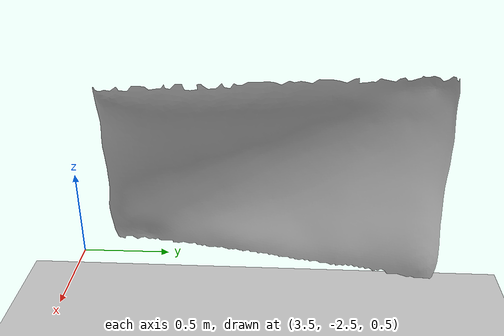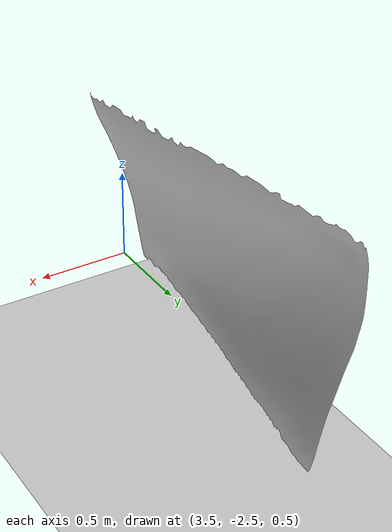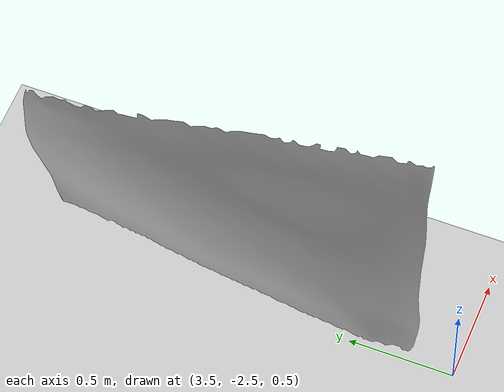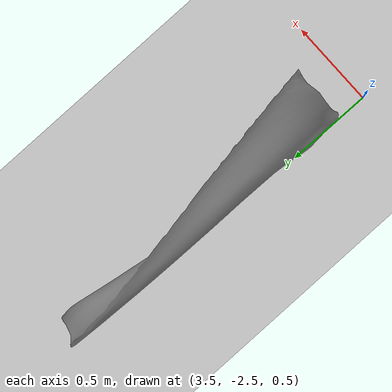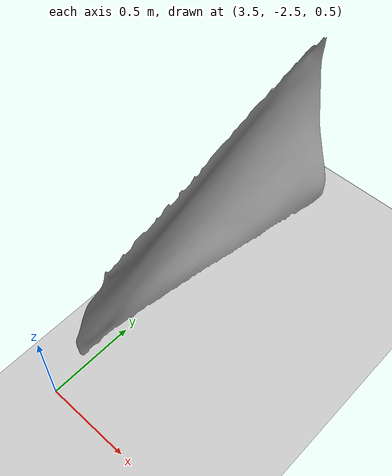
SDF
<?xml version="1.0" ?>
<sdf version="1.5">
  <world name="default">
    <!-- A global light source -->
    <include>
      <uri>model://sun</uri>
    </include>
    <!-- A ground plane -->
    <include>
      <uri>model://ground_plane</uri>
    </include>
    <include>
      <uri>model://asphalt_plane</uri>
    </include>
 <model name='wall'>
        <pose>0 0 0 0 0 0</pose>
        <link name='wall_link'>
            <pose>0 0 0 0 -0 0</pose>
            <gravity>1</gravity>
            <self_collide>0</self_collide>
            <kinematic>0</kinematic>
            <collision name='wall_collision'>
                <pose>0 0 0 0 -0 0</pose>
                <geometry>
                    <mesh>
                        <uri>model://meshes/vicon.stl</uri>
                        <scale>1 1 1</scale>
                    </mesh>
                </geometry>
            </collision>
            <visual name='wall_visual'>
                <pose>0 0 0 0 -0 0</pose>
                <cast_shadows>1</cast_shadows>
                <geometry>
                        <mesh>
                            <uri>model://meshes/vicon.stl</uri>
                        <scale>1 1 1</scale>
                        </mesh>
                </geometry>
            </visual>
        </link>
        <static>1</static>
        <allow_auto_disable>1</allow_auto_disable>
    </model>

    <!-- Only one ROS interface plugin is required per world, as any other plugin can connect a Gazebo
         topic to a ROS topic (or vise versa). -->
    <plugin name="ros_interface_plugin" filename="librotors_gazebo_ros_interface_plugin.so"/>

    <physics name='default_physics' default='0' type='ode'>
      <gravity>0 0 -9.8066</gravity>
      <ode>
        <solver>
          <type>quick</type>
          <iters>10</iters>
          <sor>1.3</sor>
          <use_dynamic_moi_rescaling>0</use_dynamic_moi_rescaling>
        </solver>
        <constraints>
          <cfm>0</cfm>
          <erp>0.2</erp>
          <contact_max_correcting_vel>100</contact_max_correcting_vel>
          <contact_surface_layer>0.001</contact_surface_layer>
        </constraints>
      </ode>
      <max_step_size>0.002</max_step_size>
      <real_time_factor>1</real_time_factor>
      <real_time_update_rate>500</real_time_update_rate>
      <magnetic_field>6e-06 2.3e-05 -4.2e-05</magnetic_field>
    </physics>
  </world>
</sdf>
